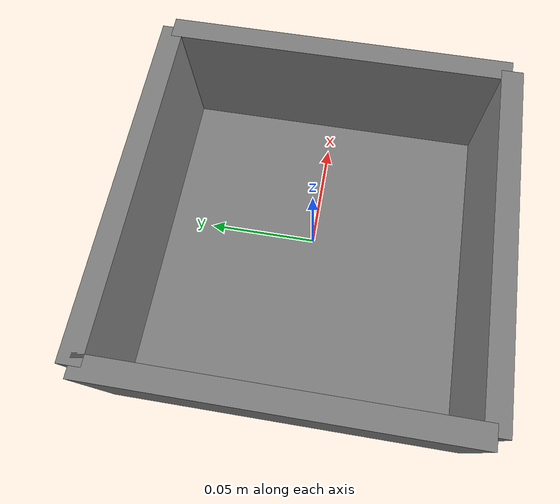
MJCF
<mujoco model="rectangular_bowl">
    <compiler angle="degree" coordinate="local"/>
    <option timestep="0.01"/>
    <size njmax="1000" nconmax="200"/>

    <worldbody>
        <!-- Ground plane -->

        <!-- Rectangular Bowl -->
        <body>
        <body name="object">
            <!-- Bottom -->
            <geom type="box" size="0.08 0.08 0.005" pos="0 0 -0.020" rgba="0.5 0.5 0.5 1" solimp="0.998 0.998 0.001" solref="0.001 1" density="50" friction="0.95 0.3 0.1" contype="0" conaffinity="0" group="1"/>
            <geom type="box" size="0.08 0.08 0.005" pos="0 0 -0.020" rgba="0.5 0.5 0.5 1" solimp="0.998 0.998 0.001" solref="0.001 1" density="50" friction="0.95 0.3 0.1" group="0"/>
            <!-- Side Walls -->
            <geom type="box" size="0.005 0.08 0.03" pos="0.08 0 0.015" rgba="0.5 0.5 0.5 1" solimp="0.998 0.998 0.001" solref="0.001 1" density="50" friction="0.95 0.3 0.1" contype="0" conaffinity="0" group="1"/>
            <geom type="box" size="0.005 0.08 0.03" pos="0.08 0 0.015" rgba="0.5 0.5 0.5 1" solimp="0.998 0.998 0.001" solref="0.001 1" density="50" friction="0.95 0.3 0.1" group="0"/>

            <geom type="box" size="0.005 0.08 0.03" pos="-0.08 0 0.015" rgba="0.5 0.5 0.5 1" solimp="0.998 0.998 0.001" solref="0.001 1" density="50" friction="0.95 0.3 0.1" contype="0" conaffinity="0" group="1"/>
            <geom type="box" size="0.005 0.08 0.03" pos="-0.08 0 0.015" rgba="0.5 0.5 0.5 1" solimp="0.998 0.998 0.001" solref="0.001 1" density="50" friction="0.95 0.3 0.1" group="0"/>

            <geom type="box" size="0.08 0.005 0.03" pos="0 -0.08 0.015" rgba="0.5 0.5 0.5 1" solimp="0.998 0.998 0.001" solref="0.001 1" density="50" friction="0.95 0.3 0.1" contype="0" conaffinity="0" group="1"/>
            <geom type="box" size="0.08 0.005 0.03" pos="0 -0.08 0.015" rgba="0.5 0.5 0.5 1" solimp="0.998 0.998 0.001" solref="0.001 1" density="50" friction="0.95 0.3 0.1" group="0"/>

            <geom type="box" size="0.08 0.005 0.03" pos="0 0.08 0.015" rgba="0.5 0.5 0.5 1" solimp="0.998 0.998 0.001" solref="0.001 1" density="50" friction="0.95 0.3 0.1" contype="0" conaffinity="0" group="1"/>
            <geom type="box" size="0.08 0.005 0.03" pos="0 0.08 0.015" rgba="0.5 0.5 0.5 1" solimp="0.998 0.998 0.001" solref="0.001 1" density="50" friction="0.95 0.3 0.1" group="0"/>
        </body>

        <!-- Dynamic Crystals -->

        <site rgba="0 0 0 0" size="0.005" pos="0 0 -0.082" name="bottom_site"/>
        <site rgba="0 0 0 0" size="0.005" pos="0 0 0.075" name="top_site"/>
        <site rgba="0 0 0 0" size="0.005" pos="0.0254 0.0254 0" name="horizontal_radius_site"/>
        </body>

    </worldbody>
</mujoco>
